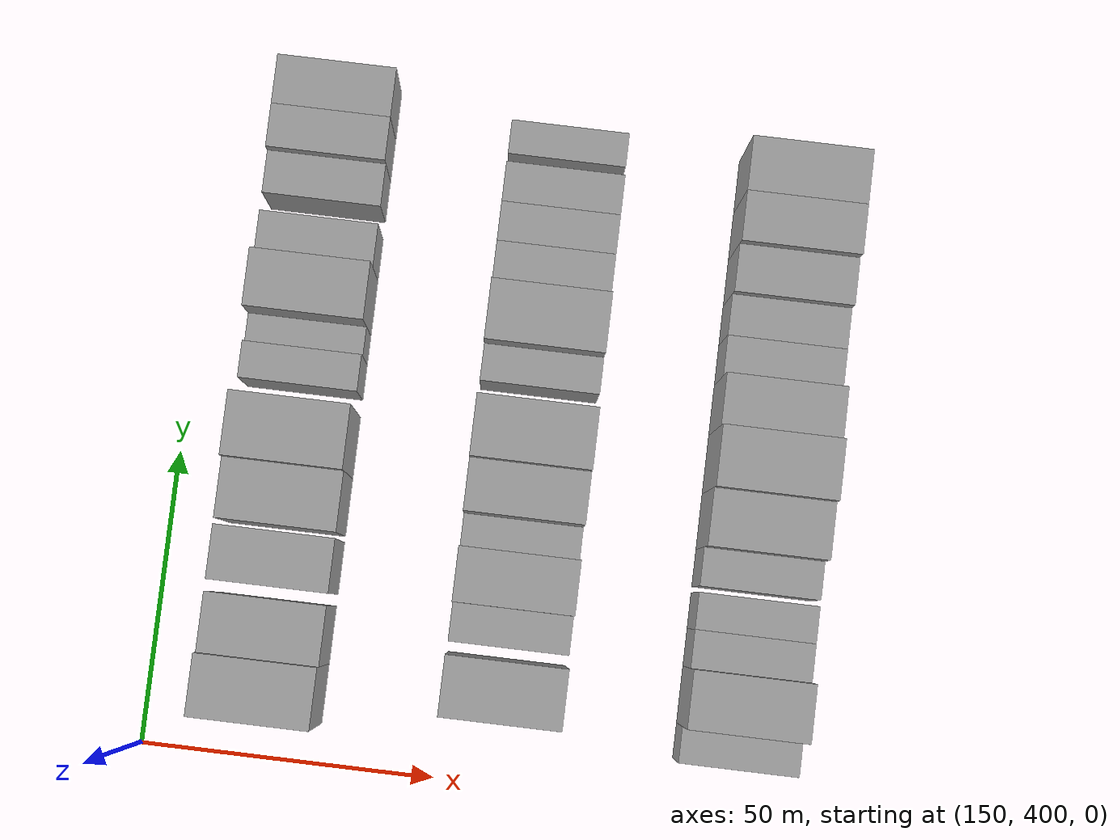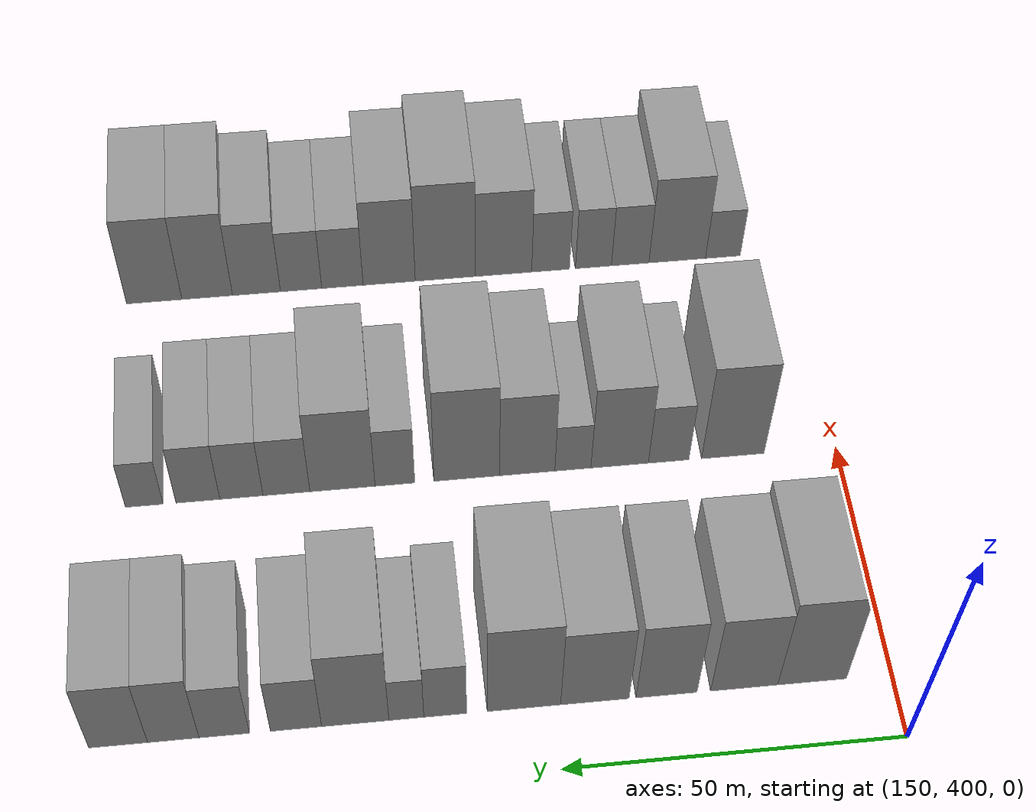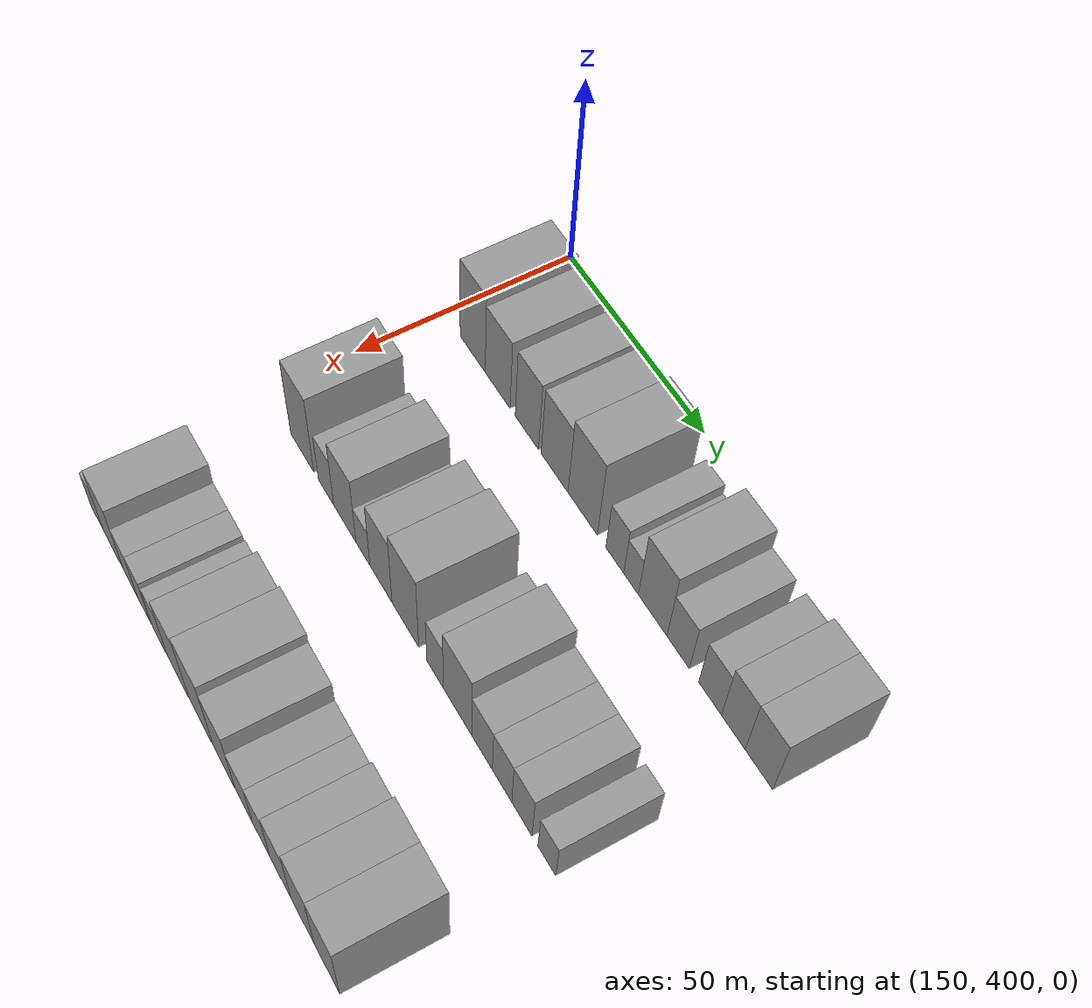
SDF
<sdf version="1.6">
 <world name="default">
  <model name="building_530">
   <static>1</static>
   <pose>170.0000 411.8530 0 0.000000 0.000000 0.000000</pose>
   <link name="link">
    <pose>0 0 12.00 0 0 0</pose>
    <collision name="collision"><geometry><box><size>20.0000 10.1986 24.0000</size></box></geometry></collision>
    <visual name="visual">
     <cast_shadows>0</cast_shadows>
     <geometry><box><size>20.0000 10.1986 24.0000</size></box></geometry>
     <material>
      <script>
       <uri>model://grey_wall/materials/scripts</uri>
       <uri>model://grey_wall/materials/textures</uri>
       <name>vrc/grey_wall</name>
      </script>
     </material>
    </visual>
   </link>
  </model>
  <model name="building_531">
   <static>1</static>
   <pose>170.0000 421.9008 0 0.000000 0.000000 0.000000</pose>
   <link name="link">
    <pose>0 0 10.50 0 0 0</pose>
    <collision name="collision"><geometry><box><size>20.0000 9.8970 21.0000</size></box></geometry></collision>
    <visual name="visual">
     <cast_shadows>0</cast_shadows>
     <geometry><box><size>20.0000 9.8970 21.0000</size></box></geometry>
     <material>
      <script>
       <uri>model://grey_wall/materials/scripts</uri>
       <uri>model://grey_wall/materials/textures</uri>
       <name>vrc/grey_wall</name>
      </script>
     </material>
    </visual>
   </link>
  </model>
  <model name="building_532">
   <static>1</static>
   <pose>170.0000 433.3352 0 0.000000 0.000000 0.000000</pose>
   <link name="link">
    <pose>0 0 10.50 0 0 0</pose>
    <collision name="collision"><geometry><box><size>20.0000 8.9717 21.0000</size></box></geometry></collision>
    <visual name="visual">
     <cast_shadows>0</cast_shadows>
     <geometry><box><size>20.0000 8.9717 21.0000</size></box></geometry>
     <material>
      <script>
       <uri>model://grey_wall/materials/scripts</uri>
       <uri>model://grey_wall/materials/textures</uri>
       <name>vrc/grey_wall</name>
      </script>
     </material>
    </visual>
   </link>
  </model>
  <model name="building_533">
   <static>1</static>
   <pose>170.0000 443.8357 0 0.000000 0.000000 0.000000</pose>
   <link name="link">
    <pose>0 0 10.50 0 0 0</pose>
    <collision name="collision"><geometry><box><size>20.0000 10.0292 21.0000</size></box></geometry></collision>
    <visual name="visual">
     <cast_shadows>0</cast_shadows>
     <geometry><box><size>20.0000 10.0292 21.0000</size></box></geometry>
     <material>
      <script>
       <uri>model://grey_wall/materials/scripts</uri>
       <uri>model://grey_wall/materials/textures</uri>
       <name>vrc/grey_wall</name>
      </script>
     </material>
    </visual>
   </link>
  </model>
  <model name="building_534">
   <static>1</static>
   <pose>170.0000 454.1911 0 0.000000 0.000000 0.000000</pose>
   <link name="link">
    <pose>0 0 12.00 0 0 0</pose>
    <collision name="collision"><geometry><box><size>20.0000 10.6815 24.0000</size></box></geometry></collision>
    <visual name="visual">
     <cast_shadows>0</cast_shadows>
     <geometry><box><size>20.0000 10.6815 24.0000</size></box></geometry>
     <material>
      <script>
       <uri>model://grey_wall/materials/scripts</uri>
       <uri>model://grey_wall/materials/textures</uri>
       <name>vrc/grey_wall</name>
      </script>
     </material>
    </visual>
   </link>
  </model>
  <model name="building_535">
   <static>1</static>
   <pose>170.0000 465.6316 0 0.000000 0.000000 0.000000</pose>
   <link name="link">
    <pose>0 0 7.50 0 0 0</pose>
    <collision name="collision"><geometry><box><size>20.0000 6.1996 15.0000</size></box></geometry></collision>
    <visual name="visual">
     <cast_shadows>0</cast_shadows>
     <geometry><box><size>20.0000 6.1996 15.0000</size></box></geometry>
     <material>
      <script>
       <uri>model://grey_wall/materials/scripts</uri>
       <uri>model://grey_wall/materials/textures</uri>
       <name>vrc/grey_wall</name>
      </script>
     </material>
    </visual>
   </link>
  </model>
  <model name="building_536">
   <static>1</static>
   <pose>170.0000 471.2588 0 0.000000 0.000000 0.000000</pose>
   <link name="link">
    <pose>0 0 6.00 0 0 0</pose>
    <collision name="collision"><geometry><box><size>20.0000 5.0548 12.0000</size></box></geometry></collision>
    <visual name="visual">
     <cast_shadows>0</cast_shadows>
     <geometry><box><size>20.0000 5.0548 12.0000</size></box></geometry>
     <material>
      <script>
       <uri>model://grey_wall/materials/scripts</uri>
       <uri>model://grey_wall/materials/textures</uri>
       <name>vrc/grey_wall</name>
      </script>
     </material>
    </visual>
   </link>
  </model>
  <model name="building_537">
   <static>1</static>
   <pose>170.0000 478.6323 0 0.000000 0.000000 0.000000</pose>
   <link name="link">
    <pose>0 0 10.50 0 0 0</pose>
    <collision name="collision"><geometry><box><size>20.0000 9.6921 21.0000</size></box></geometry></collision>
    <visual name="visual">
     <cast_shadows>0</cast_shadows>
     <geometry><box><size>20.0000 9.6921 21.0000</size></box></geometry>
     <material>
      <script>
       <uri>model://grey_wall/materials/scripts</uri>
       <uri>model://grey_wall/materials/textures</uri>
       <name>vrc/grey_wall</name>
      </script>
     </material>
    </visual>
   </link>
  </model>
  <model name="building_538">
   <static>1</static>
   <pose>170.0000 487.1583 0 0.000000 0.000000 0.000000</pose>
   <link name="link">
    <pose>0 0 7.50 0 0 0</pose>
    <collision name="collision"><geometry><box><size>20.0000 7.3598 15.0000</size></box></geometry></collision>
    <visual name="visual">
     <cast_shadows>0</cast_shadows>
     <geometry><box><size>20.0000 7.3598 15.0000</size></box></geometry>
     <material>
      <script>
       <uri>model://grey_wall/materials/scripts</uri>
       <uri>model://grey_wall/materials/textures</uri>
       <name>vrc/grey_wall</name>
      </script>
     </material>
    </visual>
   </link>
  </model>
  <model name="building_539">
   <static>1</static>
   <pose>170.0000 497.4530 0 0.000000 0.000000 0.000000</pose>
   <link name="link">
    <pose>0 0 7.50 0 0 0</pose>
    <collision name="collision"><geometry><box><size>20.0000 7.2296 15.0000</size></box></geometry></collision>
    <visual name="visual">
     <cast_shadows>0</cast_shadows>
     <geometry><box><size>20.0000 7.2296 15.0000</size></box></geometry>
     <material>
      <script>
       <uri>model://grey_wall/materials/scripts</uri>
       <uri>model://grey_wall/materials/textures</uri>
       <name>vrc/grey_wall</name>
      </script>
     </material>
    </visual>
   </link>
  </model>
  <model name="building_540">
   <static>1</static>
   <pose>170.0000 504.7379 0 0.000000 0.000000 0.000000</pose>
   <link name="link">
    <pose>0 0 9.00 0 0 0</pose>
    <collision name="collision"><geometry><box><size>20.0000 7.3401 18.0000</size></box></geometry></collision>
    <visual name="visual">
     <cast_shadows>0</cast_shadows>
     <geometry><box><size>20.0000 7.3401 18.0000</size></box></geometry>
     <material>
      <script>
       <uri>model://grey_wall/materials/scripts</uri>
       <uri>model://grey_wall/materials/textures</uri>
       <name>vrc/grey_wall</name>
      </script>
     </material>
    </visual>
   </link>
  </model>
  <model name="building_541">
   <static>1</static>
   <pose>170.0000 512.5933 0 0.000000 0.000000 0.000000</pose>
   <link name="link">
    <pose>0 0 9.00 0 0 0</pose>
    <collision name="collision"><geometry><box><size>20.0000 8.3707 18.0000</size></box></geometry></collision>
    <visual name="visual">
     <cast_shadows>0</cast_shadows>
     <geometry><box><size>20.0000 8.3707 18.0000</size></box></geometry>
     <material>
      <script>
       <uri>model://grey_wall/materials/scripts</uri>
       <uri>model://grey_wall/materials/textures</uri>
       <name>vrc/grey_wall</name>
      </script>
     </material>
    </visual>
   </link>
  </model>
  <model name="building_665">
   <static>1</static>
   <pose>210.0000 416.5102 0 0.000000 0.000000 0.000000</pose>
   <link name="link">
    <pose>0 0 12.00 0 0 0</pose>
    <collision name="collision"><geometry><box><size>20.0000 9.9912 24.0000</size></box></geometry></collision>
    <visual name="visual">
     <cast_shadows>0</cast_shadows>
     <geometry><box><size>20.0000 9.9912 24.0000</size></box></geometry>
     <material>
      <script>
       <uri>model://grey_wall/materials/scripts</uri>
       <uri>model://grey_wall/materials/textures</uri>
       <name>vrc/grey_wall</name>
      </script>
     </material>
    </visual>
   </link>
  </model>
  <model name="building_666">
   <static>1</static>
   <pose>210.0000 426.7360 0 0.000000 0.000000 0.000000</pose>
   <link name="link">
    <pose>0 0 7.50 0 0 0</pose>
    <collision name="collision"><geometry><box><size>20.0000 6.4606 15.0000</size></box></geometry></collision>
    <visual name="visual">
     <cast_shadows>0</cast_shadows>
     <geometry><box><size>20.0000 6.4606 15.0000</size></box></geometry>
     <material>
      <script>
       <uri>model://grey_wall/materials/scripts</uri>
       <uri>model://grey_wall/materials/textures</uri>
       <name>vrc/grey_wall</name>
      </script>
     </material>
    </visual>
   </link>
  </model>
  <model name="building_667">
   <static>1</static>
   <pose>210.0000 434.5325 0 0.000000 0.000000 0.000000</pose>
   <link name="link">
    <pose>0 0 10.50 0 0 0</pose>
    <collision name="collision"><geometry><box><size>20.0000 9.1324 21.0000</size></box></geometry></collision>
    <visual name="visual">
     <cast_shadows>0</cast_shadows>
     <geometry><box><size>20.0000 9.1324 21.0000</size></box></geometry>
     <material>
      <script>
       <uri>model://grey_wall/materials/scripts</uri>
       <uri>model://grey_wall/materials/textures</uri>
       <name>vrc/grey_wall</name>
      </script>
     </material>
    </visual>
   </link>
  </model>
  <model name="building_668">
   <static>1</static>
   <pose>210.0000 441.9492 0 0.000000 0.000000 0.000000</pose>
   <link name="link">
    <pose>0 0 6.00 0 0 0</pose>
    <collision name="collision"><geometry><box><size>20.0000 5.7009 12.0000</size></box></geometry></collision>
    <visual name="visual">
     <cast_shadows>0</cast_shadows>
     <geometry><box><size>20.0000 5.7009 12.0000</size></box></geometry>
     <material>
      <script>
       <uri>model://grey_wall/materials/scripts</uri>
       <uri>model://grey_wall/materials/textures</uri>
       <name>vrc/grey_wall</name>
      </script>
     </material>
    </visual>
   </link>
  </model>
  <model name="building_669">
   <static>1</static>
   <pose>210.0000 449.1795 0 0.000000 0.000000 0.000000</pose>
   <link name="link">
    <pose>0 0 10.50 0 0 0</pose>
    <collision name="collision"><geometry><box><size>20.0000 8.7599 21.0000</size></box></geometry></collision>
    <visual name="visual">
     <cast_shadows>0</cast_shadows>
     <geometry><box><size>20.0000 8.7599 21.0000</size></box></geometry>
     <material>
      <script>
       <uri>model://grey_wall/materials/scripts</uri>
       <uri>model://grey_wall/materials/textures</uri>
       <name>vrc/grey_wall</name>
      </script>
     </material>
    </visual>
   </link>
  </model>
  <model name="building_670">
   <static>1</static>
   <pose>210.0000 458.6980 0 0.000000 0.000000 0.000000</pose>
   <link name="link">
    <pose>0 0 12.00 0 0 0</pose>
    <collision name="collision"><geometry><box><size>20.0000 10.2771 24.0000</size></box></geometry></collision>
    <visual name="visual">
     <cast_shadows>0</cast_shadows>
     <geometry><box><size>20.0000 10.2771 24.0000</size></box></geometry>
     <material>
      <script>
       <uri>model://grey_wall/materials/scripts</uri>
       <uri>model://grey_wall/materials/textures</uri>
       <name>vrc/grey_wall</name>
      </script>
     </material>
    </visual>
   </link>
  </model>
  <model name="building_671">
   <static>1</static>
   <pose>210.0000 469.9481 0 0.000000 0.000000 0.000000</pose>
   <link name="link">
    <pose>0 0 7.50 0 0 0</pose>
    <collision name="collision"><geometry><box><size>20.0000 6.2230 15.0000</size></box></geometry></collision>
    <visual name="visual">
     <cast_shadows>0</cast_shadows>
     <geometry><box><size>20.0000 6.2230 15.0000</size></box></geometry>
     <material>
      <script>
       <uri>model://grey_wall/materials/scripts</uri>
       <uri>model://grey_wall/materials/textures</uri>
       <name>vrc/grey_wall</name>
      </script>
     </material>
    </visual>
   </link>
  </model>
  <model name="building_672">
   <static>1</static>
   <pose>210.0000 478.1426 0 0.000000 0.000000 0.000000</pose>
   <link name="link">
    <pose>0 0 10.50 0 0 0</pose>
    <collision name="collision"><geometry><box><size>20.0000 10.1661 21.0000</size></box></geometry></collision>
    <visual name="visual">
     <cast_shadows>0</cast_shadows>
     <geometry><box><size>20.0000 10.1661 21.0000</size></box></geometry>
     <material>
      <script>
       <uri>model://grey_wall/materials/scripts</uri>
       <uri>model://grey_wall/materials/textures</uri>
       <name>vrc/grey_wall</name>
      </script>
     </material>
    </visual>
   </link>
  </model>
  <model name="building_673">
   <static>1</static>
   <pose>210.0000 486.8708 0 0.000000 0.000000 0.000000</pose>
   <link name="link">
    <pose>0 0 7.50 0 0 0</pose>
    <collision name="collision"><geometry><box><size>20.0000 7.2904 15.0000</size></box></geometry></collision>
    <visual name="visual">
     <cast_shadows>0</cast_shadows>
     <geometry><box><size>20.0000 7.2904 15.0000</size></box></geometry>
     <material>
      <script>
       <uri>model://grey_wall/materials/scripts</uri>
       <uri>model://grey_wall/materials/textures</uri>
       <name>vrc/grey_wall</name>
      </script>
     </material>
    </visual>
   </link>
  </model>
  <model name="building_674">
   <static>1</static>
   <pose>210.0000 493.8642 0 0.000000 0.000000 0.000000</pose>
   <link name="link">
    <pose>0 0 7.50 0 0 0</pose>
    <collision name="collision"><geometry><box><size>20.0000 6.6965 15.0000</size></box></geometry></collision>
    <visual name="visual">
     <cast_shadows>0</cast_shadows>
     <geometry><box><size>20.0000 6.6965 15.0000</size></box></geometry>
     <material>
      <script>
       <uri>model://grey_wall/materials/scripts</uri>
       <uri>model://grey_wall/materials/textures</uri>
       <name>vrc/grey_wall</name>
      </script>
     </material>
    </visual>
   </link>
  </model>
  <model name="building_675">
   <static>1</static>
   <pose>210.0000 500.6043 0 0.000000 0.000000 0.000000</pose>
   <link name="link">
    <pose>0 0 7.50 0 0 0</pose>
    <collision name="collision"><geometry><box><size>20.0000 6.7836 15.0000</size></box></geometry></collision>
    <visual name="visual">
     <cast_shadows>0</cast_shadows>
     <geometry><box><size>20.0000 6.7836 15.0000</size></box></geometry>
     <material>
      <script>
       <uri>model://grey_wall/materials/scripts</uri>
       <uri>model://grey_wall/materials/textures</uri>
       <name>vrc/grey_wall</name>
      </script>
     </material>
    </visual>
   </link>
  </model>
  <model name="building_676">
   <static>1</static>
   <pose>210.0000 508.9045 0 0.000000 0.000000 0.000000</pose>
   <link name="link">
    <pose>0 0 6.00 0 0 0</pose>
    <collision name="collision"><geometry><box><size>20.0000 5.8169 12.0000</size></box></geometry></collision>
    <visual name="visual">
     <cast_shadows>0</cast_shadows>
     <geometry><box><size>20.0000 5.8169 12.0000</size></box></geometry>
     <material>
      <script>
       <uri>model://grey_wall/materials/scripts</uri>
       <uri>model://grey_wall/materials/textures</uri>
       <name>vrc/grey_wall</name>
      </script>
     </material>
    </visual>
   </link>
  </model>
  <model name="building_796">
   <static>1</static>
   <pose>250.0000 411.1595 0 0.000000 0.000000 0.000000</pose>
   <link name="link">
    <pose>0 0 6.00 0 0 0</pose>
    <collision name="collision"><geometry><box><size>20.0000 5.9965 12.0000</size></box></geometry></collision>
    <visual name="visual">
     <cast_shadows>0</cast_shadows>
     <geometry><box><size>20.0000 5.9965 12.0000</size></box></geometry>
     <material>
      <script>
       <uri>model://grey_wall/materials/scripts</uri>
       <uri>model://grey_wall/materials/textures</uri>
       <name>vrc/grey_wall</name>
      </script>
     </material>
    </visual>
   </link>
  </model>
  <model name="building_797">
   <static>1</static>
   <pose>250.0000 418.9989 0 0.000000 0.000000 0.000000</pose>
   <link name="link">
    <pose>0 0 10.50 0 0 0</pose>
    <collision name="collision"><geometry><box><size>20.0000 9.6823 21.0000</size></box></geometry></collision>
    <visual name="visual">
     <cast_shadows>0</cast_shadows>
     <geometry><box><size>20.0000 9.6823 21.0000</size></box></geometry>
     <material>
      <script>
       <uri>model://grey_wall/materials/scripts</uri>
       <uri>model://grey_wall/materials/textures</uri>
       <name>vrc/grey_wall</name>
      </script>
     </material>
    </visual>
   </link>
  </model>
  <model name="building_798">
   <static>1</static>
   <pose>250.0000 427.0473 0 0.000000 0.000000 0.000000</pose>
   <link name="link">
    <pose>0 0 7.50 0 0 0</pose>
    <collision name="collision"><geometry><box><size>20.0000 6.4147 15.0000</size></box></geometry></collision>
    <visual name="visual">
     <cast_shadows>0</cast_shadows>
     <geometry><box><size>20.0000 6.4147 15.0000</size></box></geometry>
     <material>
      <script>
       <uri>model://grey_wall/materials/scripts</uri>
       <uri>model://grey_wall/materials/textures</uri>
       <name>vrc/grey_wall</name>
      </script>
     </material>
    </visual>
   </link>
  </model>
  <model name="building_799">
   <static>1</static>
   <pose>250.0000 433.3281 0 0.000000 0.000000 0.000000</pose>
   <link name="link">
    <pose>0 0 7.50 0 0 0</pose>
    <collision name="collision"><geometry><box><size>20.0000 6.1469 15.0000</size></box></geometry></collision>
    <visual name="visual">
     <cast_shadows>0</cast_shadows>
     <geometry><box><size>20.0000 6.1469 15.0000</size></box></geometry>
     <material>
      <script>
       <uri>model://grey_wall/materials/scripts</uri>
       <uri>model://grey_wall/materials/textures</uri>
       <name>vrc/grey_wall</name>
      </script>
     </material>
    </visual>
   </link>
  </model>
  <model name="building_800">
   <static>1</static>
   <pose>250.0000 440.6244 0 0.000000 0.000000 0.000000</pose>
   <link name="link">
    <pose>0 0 7.50 0 0 0</pose>
    <collision name="collision"><geometry><box><size>20.0000 6.4456 15.0000</size></box></geometry></collision>
    <visual name="visual">
     <cast_shadows>0</cast_shadows>
     <geometry><box><size>20.0000 6.4456 15.0000</size></box></geometry>
     <material>
      <script>
       <uri>model://grey_wall/materials/scripts</uri>
       <uri>model://grey_wall/materials/textures</uri>
       <name>vrc/grey_wall</name>
      </script>
     </material>
    </visual>
   </link>
  </model>
  <model name="building_801">
   <static>1</static>
   <pose>250.0000 448.6291 0 0.000000 0.000000 0.000000</pose>
   <link name="link">
    <pose>0 0 10.50 0 0 0</pose>
    <collision name="collision"><geometry><box><size>20.0000 9.5637 21.0000</size></box></geometry></collision>
    <visual name="visual">
     <cast_shadows>0</cast_shadows>
     <geometry><box><size>20.0000 9.5637 21.0000</size></box></geometry>
     <material>
      <script>
       <uri>model://grey_wall/materials/scripts</uri>
       <uri>model://grey_wall/materials/textures</uri>
       <name>vrc/grey_wall</name>
      </script>
     </material>
    </visual>
   </link>
  </model>
  <model name="building_802">
   <static>1</static>
   <pose>250.0000 458.4852 0 0.000000 0.000000 0.000000</pose>
   <link name="link">
    <pose>0 0 12.00 0 0 0</pose>
    <collision name="collision"><geometry><box><size>20.0000 10.1486 24.0000</size></box></geometry></collision>
    <visual name="visual">
     <cast_shadows>0</cast_shadows>
     <geometry><box><size>20.0000 10.1486 24.0000</size></box></geometry>
     <material>
      <script>
       <uri>model://grey_wall/materials/scripts</uri>
       <uri>model://grey_wall/materials/textures</uri>
       <name>vrc/grey_wall</name>
      </script>
     </material>
    </visual>
   </link>
  </model>
  <model name="building_803">
   <static>1</static>
   <pose>250.0000 467.9533 0 0.000000 0.000000 0.000000</pose>
   <link name="link">
    <pose>0 0 10.50 0 0 0</pose>
    <collision name="collision"><geometry><box><size>20.0000 8.7875 21.0000</size></box></geometry></collision>
    <visual name="visual">
     <cast_shadows>0</cast_shadows>
     <geometry><box><size>20.0000 8.7875 21.0000</size></box></geometry>
     <material>
      <script>
       <uri>model://grey_wall/materials/scripts</uri>
       <uri>model://grey_wall/materials/textures</uri>
       <name>vrc/grey_wall</name>
      </script>
     </material>
    </visual>
   </link>
  </model>
  <model name="building_804">
   <static>1</static>
   <pose>250.0000 475.8177 0 0.000000 0.000000 0.000000</pose>
   <link name="link">
    <pose>0 0 7.50 0 0 0</pose>
    <collision name="collision"><geometry><box><size>20.0000 6.9413 15.0000</size></box></geometry></collision>
    <visual name="visual">
     <cast_shadows>0</cast_shadows>
     <geometry><box><size>20.0000 6.9413 15.0000</size></box></geometry>
     <material>
      <script>
       <uri>model://grey_wall/materials/scripts</uri>
       <uri>model://grey_wall/materials/textures</uri>
       <name>vrc/grey_wall</name>
      </script>
     </material>
    </visual>
   </link>
  </model>
  <model name="building_805">
   <static>1</static>
   <pose>250.0000 482.7496 0 0.000000 0.000000 0.000000</pose>
   <link name="link">
    <pose>0 0 7.50 0 0 0</pose>
    <collision name="collision"><geometry><box><size>20.0000 6.9226 15.0000</size></box></geometry></collision>
    <visual name="visual">
     <cast_shadows>0</cast_shadows>
     <geometry><box><size>20.0000 6.9226 15.0000</size></box></geometry>
     <material>
      <script>
       <uri>model://grey_wall/materials/scripts</uri>
       <uri>model://grey_wall/materials/textures</uri>
       <name>vrc/grey_wall</name>
      </script>
     </material>
    </visual>
   </link>
  </model>
  <model name="building_806">
   <static>1</static>
   <pose>250.0000 490.2266 0 0.000000 0.000000 0.000000</pose>
   <link name="link">
    <pose>0 0 9.00 0 0 0</pose>
    <collision name="collision"><geometry><box><size>20.0000 8.0313 18.0000</size></box></geometry></collision>
    <visual name="visual">
     <cast_shadows>0</cast_shadows>
     <geometry><box><size>20.0000 8.0313 18.0000</size></box></geometry>
     <material>
      <script>
       <uri>model://grey_wall/materials/scripts</uri>
       <uri>model://grey_wall/materials/textures</uri>
       <name>vrc/grey_wall</name>
      </script>
     </material>
    </visual>
   </link>
  </model>
  <model name="building_807">
   <static>1</static>
   <pose>250.0000 498.4624 0 0.000000 0.000000 0.000000</pose>
   <link name="link">
    <pose>0 0 10.50 0 0 0</pose>
    <collision name="collision"><geometry><box><size>20.0000 8.4403 21.0000</size></box></geometry></collision>
    <visual name="visual">
     <cast_shadows>0</cast_shadows>
     <geometry><box><size>20.0000 8.4403 21.0000</size></box></geometry>
     <material>
      <script>
       <uri>model://grey_wall/materials/scripts</uri>
       <uri>model://grey_wall/materials/textures</uri>
       <name>vrc/grey_wall</name>
      </script>
     </material>
    </visual>
   </link>
  </model>
  <model name="building_808">
   <static>1</static>
   <pose>250.0000 507.2729 0 0.000000 0.000000 0.000000</pose>
   <link name="link">
    <pose>0 0 10.50 0 0 0</pose>
    <collision name="collision"><geometry><box><size>20.0000 9.1806 21.0000</size></box></geometry></collision>
    <visual name="visual">
     <cast_shadows>0</cast_shadows>
     <geometry><box><size>20.0000 9.1806 21.0000</size></box></geometry>
     <material>
      <script>
       <uri>model://grey_wall/materials/scripts</uri>
       <uri>model://grey_wall/materials/textures</uri>
       <name>vrc/grey_wall</name>
      </script>
     </material>
    </visual>
   </link>
  </model>
 </world>
</sdf>
